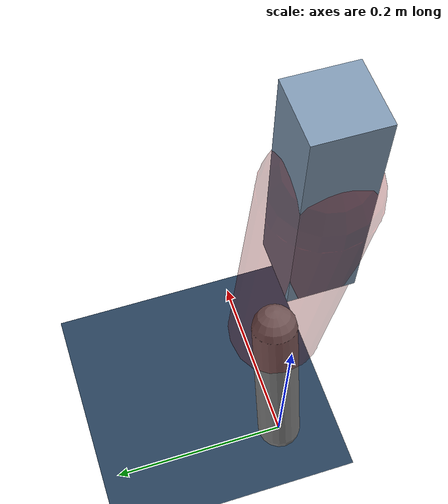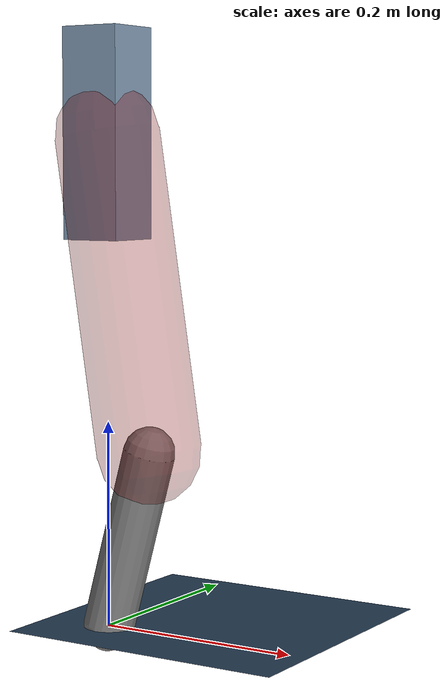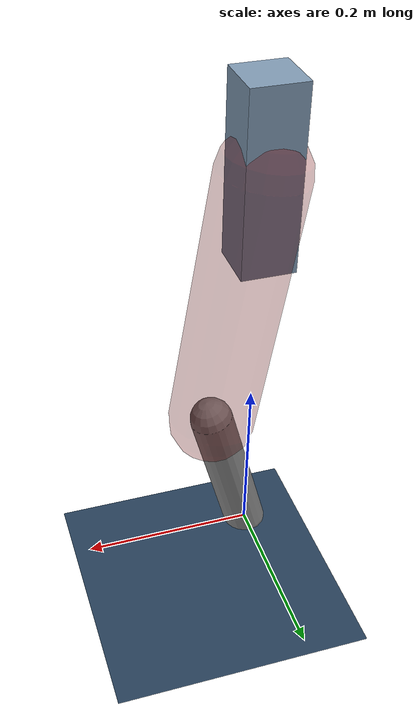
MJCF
<mujoco model="Hopper2D">
	<compiler inertiafromgeom="true" angle="radian" />
	<option timestep="0.001" integrator="implicit" cone="elliptic" solver="Newton" tolerance="1e-10" />

	<default>
		<geom contype="1" conaffinity="1" condim="3" friction="2 0.005 0.0001" solref="0.005 1" />
		<joint limited="true" damping="0.1" />
	</default>

	<asset>
		<texture name="skybox" type="skybox" builtin="gradient" rgb1=".4 .6 .8" rgb2="0 0 0" width="800" height="800" />
		<texture name="grid" type="2d" builtin="checker" rgb1=".1 .2 .3" rgb2=".2 .3 .4" width="300" height="300" mark="edge" markrgb=".2 .3 .4" />
		<material name="ground" texture="grid" texrepeat="1 1" texuniform="true" reflectance="0.1" />
		<material name="leg" rgba="0.5 0.6 0.7 1" />
	</asset>

	<worldbody>

		<geom name="floor" type="plane" size="5 5 0.25" material="ground" />

		<light directional="false" diffuse="0.8 0.8 0.8" specular="0.3 0.3 0.3" pos="0 0 2" dir="0 0 -1" />
		<light mode="targetbodycom" target="base" directional="false" diffuse="0.8 0.8 0.8" specular="0.3 0.3 0.3" pos="0 0 2" dir="0 0 -1" />

		<camera name="fixed" pos="0 -2 1" xyaxes="1 0 0 0 0 1" />
		<camera name="tracking" mode="trackcom" pos="0 -3 1" />

		<body name="root" pos="0 0 0.47564403032385116">
			<joint name="slide_x" type="slide" axis="1 0 0" range="-100 100" />
			<joint name="slide_z" type="slide" axis="0 0 1" range="0 10" />

			<body name="base" pos="0 0 0">
				<geom name="torso" type="box" size="0.03 0.03 0.1" mass="1.73" material="leg" />

				<body name="link1" pos="0 0 0" euler="0 1.415247660588775 0">
					<joint type="hinge" axis="0 -1 0" pos="0 0 0" name="hinge1" limited="true" range="-3.14 3.14" stiffness="0" damping="0.1" />
					<geom name="thigh" type="capsule" fromto="0 0 0 0.3053142020849056 0 0" size="0.05" rgba="0.5 0 0 0.3" mass="1.0031483456292452" />

					<body name="link2" pos="0.3053142020849056 0 0" euler="0 0.4209502379821494 0">
						<joint type="hinge" axis="0 -1 0" pos="0 0 0" name="hinge2" limited="true" range="-3.14 3.14" stiffness="0" damping="0.1" />
						<geom name="shank" type="capsule" fromto="0 0 0 0.18032982823894553 0 0" size="0.025" mass="0.384196845415051" />

					</body>
				</body>
			</body>
		</body>
	</worldbody>

	<actuator>
		<motor name="torque1" joint="hinge1" ctrlrange="-54.618603209296296 54.618603209296296" ctrllimited="true" gear="1" />
		<motor name="torque2" joint="hinge2" ctrlrange="-28.981654662890563 28.981654662890563" ctrllimited="true" gear="1" />
	</actuator>
</mujoco>
